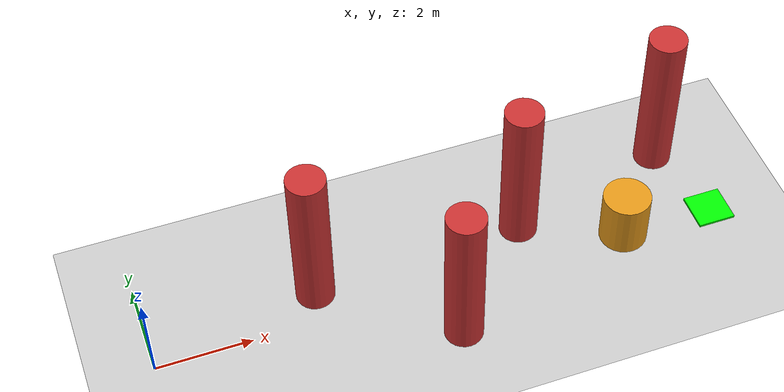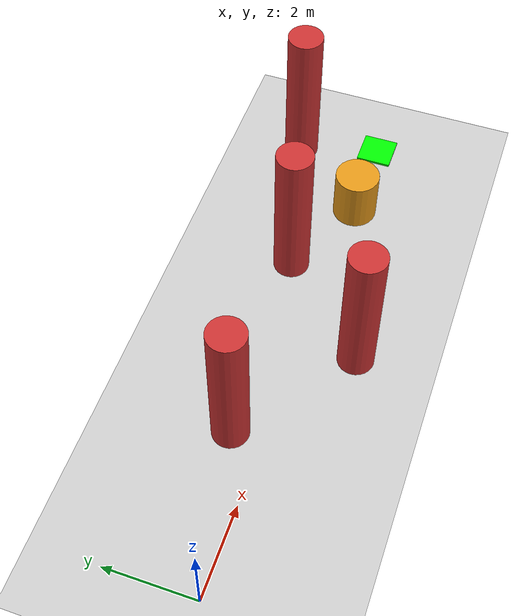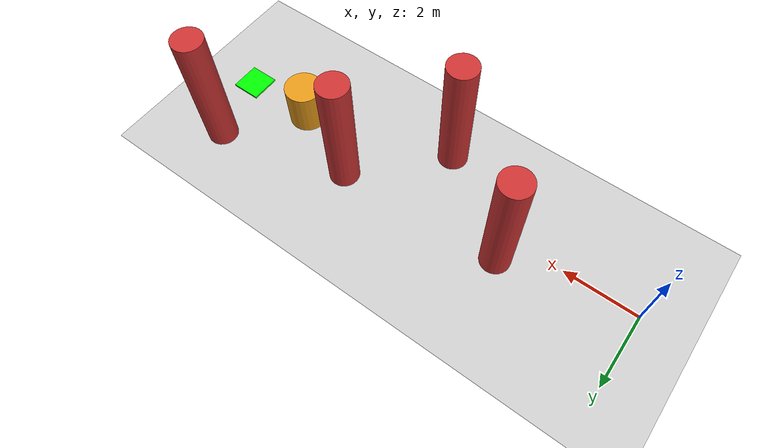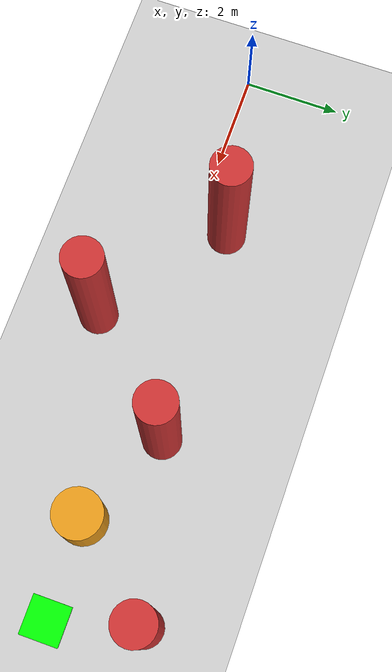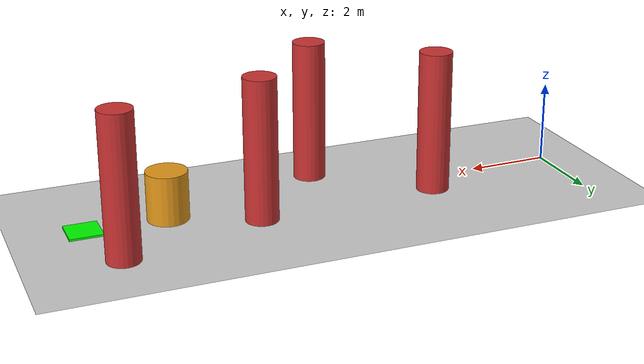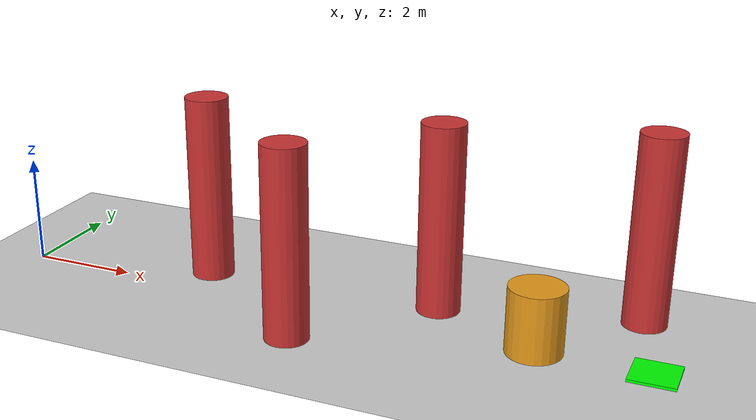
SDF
<sdf version='1.9'>
  <world name='apf_test'>
    <physics type="ode">
      <max_step_size>0.004</max_step_size>
      <real_time_factor>1.0</real_time_factor>
      <real_time_update_rate>250</real_time_update_rate>
    </physics>
    <plugin name='gz::sim::systems::Physics' filename='gz-sim-physics-system'/>
    <plugin name='gz::sim::systems::UserCommands' filename='gz-sim-user-commands-system'/>
    <plugin name='gz::sim::systems::SceneBroadcaster' filename='gz-sim-scene-broadcaster-system'/>
    <plugin name='gz::sim::systems::Contact' filename='gz-sim-contact-system'/>
    <plugin name='gz::sim::systems::Imu' filename='gz-sim-imu-system'/>
    <plugin name='gz::sim::systems::AirPressure' filename='gz-sim-air-pressure-system'/>
    <plugin name='gz::sim::systems::Sensors' filename='gz-sim-sensors-system'>
      <render_engine>ogre2</render_engine>
    </plugin>
    <scene>
      <ambient>0.6 0.6 0.6 1</ambient>
      <background>0.8 0.9 1.0 1</background>
      <shadows>true</shadows>
    </scene>

    <model name='ground_plane'>
      <static>true</static>
      <link name='link'>
        <collision name='collision'>
          <geometry>
            <plane><normal>0 0 1</normal><size>1 1</size></plane>
          </geometry>
          <surface><friction><ode/></friction><bounce/><contact/></surface>
        </collision>
        <visual name='visual'>
          <geometry>
            <plane><normal>0 0 1</normal><size>100 100</size></plane>
          </geometry>
          <material>
            <ambient>0.8 0.8 0.8 1</ambient>
            <diffuse>0.8 0.8 0.8 1</diffuse>
            <specular>0.8 0.8 0.8 1</specular>
          </material>
        </visual>
      </link>
    </model>

    <light name='sunUTC' type='directional'>
      <pose>0 0 500 0 -0 0</pose>
      <cast_shadows>true</cast_shadows>
      <intensity>1</intensity>
      <direction>0.001 0.625 -0.78</direction>
      <diffuse>0.904 0.904 0.904 1</diffuse>
      <specular>0.271 0.271 0.271 1</specular>
      <attenuation>
        <range>2000</range><linear>0</linear><constant>1</constant><quadratic>0</quadratic>
      </attenuation>
    </light>

    <!-- Goal marker: flat visual-only pad, no collision (nothing to repel from) -->
    <model name='goal_marker'>
      <static>true</static>
      <pose>12.0 0.0 0.025 0 0 0</pose>
      <link name='link'>
        <visual name='visual'>
          <geometry><box><size>0.8 0.8 0.05</size></box></geometry>
          <material>
            <ambient>0 1 0 1</ambient>
            <diffuse>0 1 0 1</diffuse>
            <emissive>0 0.5 0 1</emissive>
          </material>
        </visual>
      </link>
    </model>

    <model name='cyl_tall_1'>
      <static>true</static>
      <pose>3.5 0.7 1.75 0 0 0</pose>
      <link name='link'>
        <collision name='collision'>
          <geometry><cylinder><radius>0.4</radius><length>3.5</length></cylinder></geometry>
        </collision>
        <visual name='visual'>
          <geometry><cylinder><radius>0.4</radius><length>3.5</length></cylinder></geometry>
          <material>
            <ambient>0.8 0.2 0.2 1</ambient>
            <diffuse>0.8 0.2 0.2 1</diffuse>
          </material>
        </visual>
      </link>
    </model>

    <model name='cyl_tall_2'>
      <static>true</static>
      <pose>6.0 -1.2 1.75 0 0 0</pose>
      <link name='link'>
        <collision name='collision'>
          <geometry><cylinder><radius>0.4</radius><length>3.5</length></cylinder></geometry>
        </collision>
        <visual name='visual'>
          <geometry><cylinder><radius>0.4</radius><length>3.5</length></cylinder></geometry>
          <material>
            <ambient>0.8 0.2 0.2 1</ambient>
            <diffuse>0.8 0.2 0.2 1</diffuse>
          </material>
        </visual>
      </link>
    </model>

    <model name='cyl_tall_3'>
      <static>true</static>
      <pose>8.0 0.9 1.75 0 0 0</pose>
      <link name='link'>
        <collision name='collision'>
          <geometry><cylinder><radius>0.4</radius><length>3.5</length></cylinder></geometry>
        </collision>
        <visual name='visual'>
          <geometry><cylinder><radius>0.4</radius><length>3.5</length></cylinder></geometry>
          <material>
            <ambient>0.8 0.2 0.2 1</ambient>
            <diffuse>0.8 0.2 0.2 1</diffuse>
          </material>
        </visual>
      </link>
    </model>

    <model name='cyl_low_1'>
      <static>true</static>
      <pose>10.0 0.0 0.6 0 0 0</pose>
      <link name='link'>
        <collision name='collision'>
          <geometry><cylinder><radius>0.5</radius><length>1.2</length></cylinder></geometry>
        </collision>
        <visual name='visual'>
          <geometry><cylinder><radius>0.5</radius><length>1.2</length></cylinder></geometry>
          <material>
            <ambient>0.9 0.6 0.1 1</ambient>
            <diffuse>0.9 0.6 0.1 1</diffuse>
          </material>
        </visual>
      </link>
    </model>

    <model name='cyl_tall_4'>
      <static>true</static>
      <pose>11.5 1.8 1.75 0 0 0</pose>
      <link name='link'>
        <collision name='collision'>
          <geometry><cylinder><radius>0.4</radius><length>3.5</length></cylinder></geometry>
        </collision>
        <visual name='visual'>
          <geometry><cylinder><radius>0.4</radius><length>3.5</length></cylinder></geometry>
          <material>
            <ambient>0.8 0.2 0.2 1</ambient>
            <diffuse>0.8 0.2 0.2 1</diffuse>
          </material>
        </visual>
      </link>
    </model>
  </world>
</sdf>
